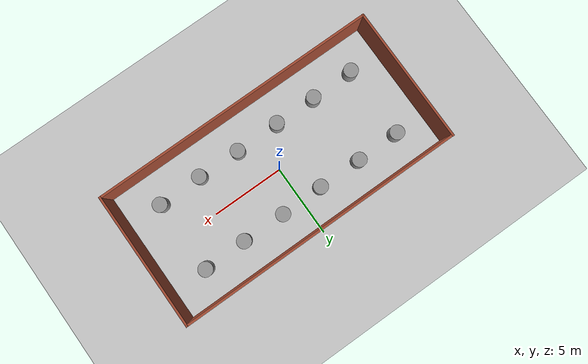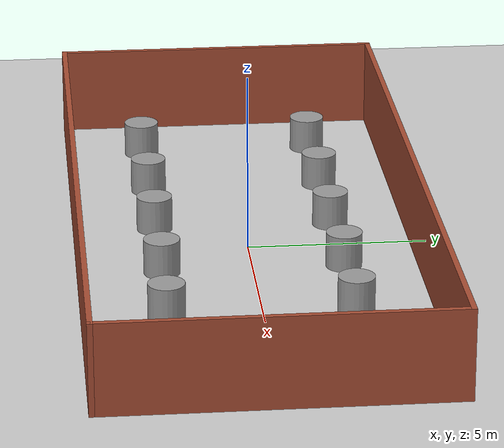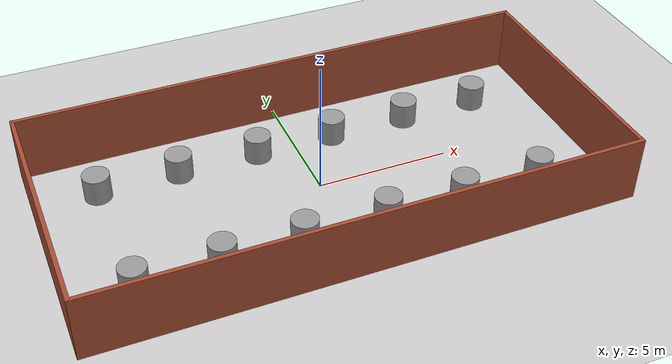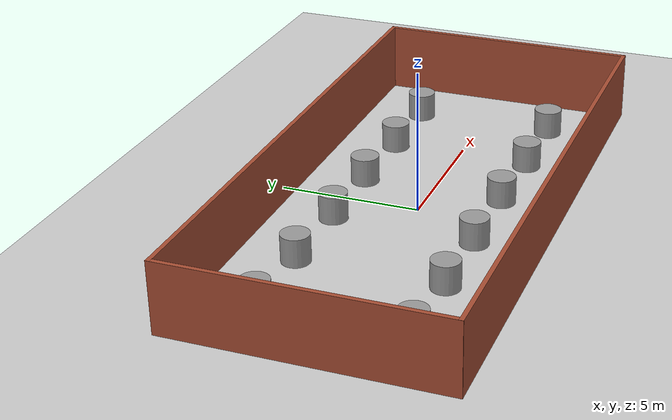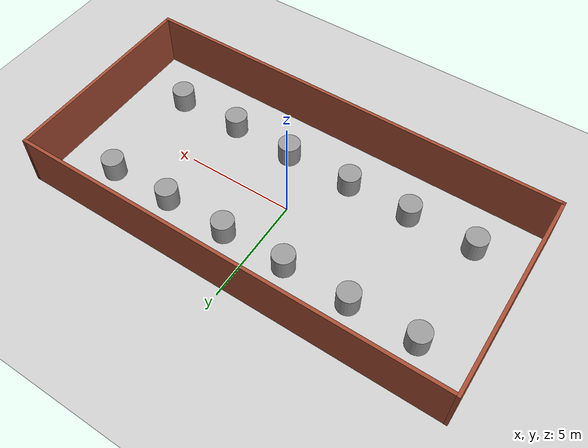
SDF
<sdf version="1.7">
 <world name="default">
  <light name="sun" type="directional">
   <pose>0 0 10 0 -0 0</pose>
   <diffuse>0.8 0.8 0.8 1</diffuse>
   <specular>0.2 0.2 0.2 1</specular>
   <attenuation>
    <range>1000</range>
    <constant>0.9</constant>
    <linear>0.01</linear>
    <quadratic>0.001</quadratic>
   </attenuation>
   <direction>-0.5 0.1 -0.9</direction>
   <spot><inner_angle>0</inner_angle><outer_angle>0</outer_angle><falloff>0</falloff></spot>
  </light>
  <model name="ground_plane">
   <static>1</static>
   <link name="link">
    <collision name="collision">
     <geometry><plane><normal>0 0 1</normal><size>100 100</size></plane></geometry>
     <surface>
      <contact><collide_bitmask>65535</collide_bitmask></contact>
      <friction><ode><mu>100</mu><mu2>50</mu2></ode></friction>
     </surface>
    </collision>
    <visual name="visual">
     <cast_shadows>0</cast_shadows>
     <geometry><plane><normal>0 0 1</normal><size>100 100</size></plane></geometry>
     <material>
      <script><uri>file://media/materials/scripts/gazebo.material</uri><name>Gazebo/Grey</name></script>
     </material>
    </visual>
   </link>
  </model>
  <gravity>0 0 -9.8</gravity>
  <magnetic_field>6e-06 2.3e-05 -4.2e-05</magnetic_field>
  <atmosphere type="adiabatic"/>
  <physics type="ode">
   <max_step_size>0.001</max_step_size>
   <real_time_factor>1</real_time_factor>
   <real_time_update_rate>1000</real_time_update_rate>
  </physics>
  <scene><ambient>0.4 0.4 0.4 1</ambient><background>0.7 0.7 0.7 1</background><shadows>1</shadows></scene>
  <spherical_coordinates>
   <surface_model>EARTH_WGS84</surface_model>
   <latitude_deg>0</latitude_deg>
   <longitude_deg>0</longitude_deg>
   <elevation>0</elevation>
   <heading_deg>0</heading_deg>
  </spherical_coordinates>
  <model name="airport">
   <pose>0.100451 -0.05979 0 0 -0 0</pose>
   <link name="Wall_16">
    <collision name="Wall_16_Collision">
     <geometry><box><size>20 0.15 2.5</size></box></geometry>
     <pose>0 0 1.25 0 -0 0</pose>
    </collision>
    <visual name="Wall_16_Visual">
     <pose>0 0 1.25 0 -0 0</pose>
     <geometry><box><size>20 0.15 2.5</size></box></geometry>
     <material>
      <script><uri>file://media/materials/scripts/gazebo.material</uri><name>Gazebo/Bricks</name></script>
      <ambient>1 1 1 1</ambient>
     </material>
     <meta><layer>0</layer></meta>
    </visual>
    <pose>0.003083 4.67145 0 0 -0 0</pose>
   </link>
   <link name="Wall_18">
    <collision name="Wall_18_Collision">
     <geometry><box><size>9.5 0.15 2.5</size></box></geometry>
     <pose>0 0 1.25 0 -0 0</pose>
    </collision>
    <visual name="Wall_18_Visual">
     <pose>0 0 1.25 0 -0 0</pose>
     <geometry><box><size>9.5 0.15 2.5</size></box></geometry>
     <material>
      <script><uri>file://media/materials/scripts/gazebo.material</uri><name>Gazebo/Bricks</name></script>
      <ambient>1 1 1 1</ambient>
     </material>
     <meta><layer>0</layer></meta>
    </visual>
    <pose>9.92808 -0.003549 0 0 -0 -1.5708</pose>
   </link>
   <link name="Wall_21">
    <collision name="Wall_21_Collision">
     <geometry><box><size>9.5 0.15 2.5</size></box></geometry>
     <pose>0 0 1.25 0 -0 0</pose>
    </collision>
    <visual name="Wall_21_Visual">
     <pose>0 0 1.25 0 -0 0</pose>
     <geometry><box><size>9.5 0.15 2.5</size></box></geometry>
     <material>
      <script><uri>file://media/materials/scripts/gazebo.material</uri><name>Gazebo/Bricks</name></script>
      <ambient>1 1 1 1</ambient>
     </material>
     <meta><layer>0</layer></meta>
    </visual>
    <pose>-9.92808 0.003548 0 0 -0 -1.5708</pose>
   </link>
   <link name="Wall_3">
    <collision name="Wall_3_Collision">
     <geometry><box><size>20 0.15 2.5</size></box></geometry>
     <pose>0 0 1.25 0 -0 0</pose>
    </collision>
    <visual name="Wall_3_Visual">
     <pose>0 0 1.25 0 -0 0</pose>
     <geometry><box><size>20 0.15 2.5</size></box></geometry>
     <material>
      <script><uri>file://media/materials/scripts/gazebo.material</uri><name>Gazebo/Bricks</name></script>
      <ambient>1 1 1 1</ambient>
     </material>
     <meta><layer>0</layer></meta>
    </visual>
    <pose>0.003083 -4.67855 0 0 -0 0</pose>
   </link>
   <static>1</static>
  </model>
  <model name="unit_cylinder">
   <pose>-7.525 -2.53595 0.499996 4e-06 2e-06 -0</pose>
   <link name="link">
    <inertial>
     <mass>1</mass>
     <inertia><ixx>0.145833</ixx><ixy>0</ixy><ixz>0</ixz><iyy>0.145833</iyy><iyz>0</iyz><izz>0.125</izz></inertia>
    </inertial>
    <collision name="collision">
     <geometry><cylinder><radius>0.5</radius><length>1</length></cylinder></geometry>
    </collision>
    <visual name="visual">
     <geometry><cylinder><radius>0.5</radius><length>1</length></cylinder></geometry>
     <material>
      <script><name>Gazebo/Grey</name><uri>file://media/materials/scripts/gazebo.material</uri></script>
     </material>
    </visual>
   </link>
  </model>
  <model name="unit_cylinder_0">
   <pose>-4.5093 -2.50496 0.499998 3e-06 -4e-06 0</pose>
   <link name="link">
    <inertial>
     <mass>1</mass>
     <inertia><ixx>0.145833</ixx><ixy>0</ixy><ixz>0</ixz><iyy>0.145833</iyy><iyz>0</iyz><izz>0.125</izz></inertia>
    </inertial>
    <collision name="collision">
     <geometry><cylinder><radius>0.5</radius><length>1</length></cylinder></geometry>
    </collision>
    <visual name="visual">
     <geometry><cylinder><radius>0.5</radius><length>1</length></cylinder></geometry>
     <material>
      <script><name>Gazebo/Grey</name><uri>file://media/materials/scripts/gazebo.material</uri></script>
     </material>
    </visual>
   </link>
  </model>
  <model name="unit_cylinder_1">
   <pose>-1.58489 -2.50291 0.499992 -3e-06 4e-06 0</pose>
   <link name="link">
    <inertial>
     <mass>1</mass>
     <inertia><ixx>0.145833</ixx><ixy>0</ixy><ixz>0</ixz><iyy>0.145833</iyy><iyz>0</iyz><izz>0.125</izz></inertia>
    </inertial>
    <collision name="collision">
     <geometry><cylinder><radius>0.5</radius><length>1</length></cylinder></geometry>
    </collision>
    <visual name="visual">
     <geometry><cylinder><radius>0.5</radius><length>1</length></cylinder></geometry>
     <material>
      <script><name>Gazebo/Grey</name><uri>file://media/materials/scripts/gazebo.material</uri></script>
     </material>
    </visual>
   </link>
  </model>
  <model name="unit_cylinder_2">
   <pose>1.51444 -2.4874 0.499998 3e-06 -4e-06 0</pose>
   <link name="link">
    <inertial>
     <mass>1</mass>
     <inertia><ixx>0.145833</ixx><ixy>0</ixy><ixz>0</ixz><iyy>0.145833</iyy><iyz>0</iyz><izz>0.125</izz></inertia>
    </inertial>
    <collision name="collision">
     <geometry><cylinder><radius>0.5</radius><length>1</length></cylinder></geometry>
    </collision>
    <visual name="visual">
     <geometry><cylinder><radius>0.5</radius><length>1</length></cylinder></geometry>
     <material>
      <script><name>Gazebo/Grey</name><uri>file://media/materials/scripts/gazebo.material</uri></script>
     </material>
    </visual>
   </link>
  </model>
  <model name="unit_cylinder_3">
   <pose>4.47192 -2.5481 0.499992 -3e-06 4e-06 0</pose>
   <link name="link">
    <inertial>
     <mass>1</mass>
     <inertia><ixx>0.145833</ixx><ixy>0</ixy><ixz>0</ixz><iyy>0.145833</iyy><iyz>0</iyz><izz>0.125</izz></inertia>
    </inertial>
    <collision name="collision">
     <geometry><cylinder><radius>0.5</radius><length>1</length></cylinder></geometry>
    </collision>
    <visual name="visual">
     <geometry><cylinder><radius>0.5</radius><length>1</length></cylinder></geometry>
     <material>
      <script><name>Gazebo/Grey</name><uri>file://media/materials/scripts/gazebo.material</uri></script>
     </material>
    </visual>
   </link>
  </model>
  <model name="unit_cylinder_5">
   <pose>-7.547 2.48273 0.499997 4e-06 3e-06 -0</pose>
   <link name="link">
    <inertial>
     <mass>1</mass>
     <inertia><ixx>0.145833</ixx><ixy>0</ixy><ixz>0</ixz><iyy>0.145833</iyy><iyz>0</iyz><izz>0.125</izz></inertia>
    </inertial>
    <collision name="collision">
     <geometry><cylinder><radius>0.5</radius><length>1</length></cylinder></geometry>
    </collision>
    <visual name="visual">
     <geometry><cylinder><radius>0.5</radius><length>1</length></cylinder></geometry>
     <material>
      <script><name>Gazebo/Grey</name><uri>file://media/materials/scripts/gazebo.material</uri></script>
     </material>
    </visual>
   </link>
  </model>
  <model name="unit_cylinder_6">
   <pose>-4.52644 2.50722 0.499992 -3e-06 4e-06 0</pose>
   <link name="link">
    <inertial>
     <mass>1</mass>
     <inertia><ixx>0.145833</ixx><ixy>0</ixy><ixz>0</ixz><iyy>0.145833</iyy><iyz>0</iyz><izz>0.125</izz></inertia>
    </inertial>
    <collision name="collision">
     <geometry><cylinder><radius>0.5</radius><length>1</length></cylinder></geometry>
    </collision>
    <visual name="visual">
     <geometry><cylinder><radius>0.5</radius><length>1</length></cylinder></geometry>
     <material>
      <script><name>Gazebo/Grey</name><uri>file://media/materials/scripts/gazebo.material</uri></script>
     </material>
    </visual>
   </link>
  </model>
  <model name="unit_cylinder_7">
   <pose>-1.49787 2.48131 0.499997 4e-06 3e-06 -0</pose>
   <link name="link">
    <inertial>
     <mass>1</mass>
     <inertia><ixx>0.145833</ixx><ixy>0</ixy><ixz>0</ixz><iyy>0.145833</iyy><iyz>0</iyz><izz>0.125</izz></inertia>
    </inertial>
    <collision name="collision">
     <geometry><cylinder><radius>0.5</radius><length>1</length></cylinder></geometry>
    </collision>
    <visual name="visual">
     <geometry><cylinder><radius>0.5</radius><length>1</length></cylinder></geometry>
     <material>
      <script><name>Gazebo/Grey</name><uri>file://media/materials/scripts/gazebo.material</uri></script>
     </material>
    </visual>
   </link>
  </model>
  <model name="unit_cylinder_8">
   <pose>1.48008 2.51109 0.499997 4e-06 4e-06 -0</pose>
   <link name="link">
    <inertial>
     <mass>1</mass>
     <inertia><ixx>0.145833</ixx><ixy>0</ixy><ixz>0</ixz><iyy>0.145833</iyy><iyz>0</iyz><izz>0.125</izz></inertia>
    </inertial>
    <collision name="collision">
     <geometry><cylinder><radius>0.5</radius><length>1</length></cylinder></geometry>
    </collision>
    <visual name="visual">
     <geometry><cylinder><radius>0.5</radius><length>1</length></cylinder></geometry>
     <material>
      <script><name>Gazebo/Grey</name><uri>file://media/materials/scripts/gazebo.material</uri></script>
     </material>
    </visual>
   </link>
  </model>
  <model name="unit_cylinder_9">
   <pose>4.47615 2.47068 0.499992 -3e-06 -4e-06 -0</pose>
   <link name="link">
    <inertial>
     <mass>1</mass>
     <inertia><ixx>0.145833</ixx><ixy>0</ixy><ixz>0</ixz><iyy>0.145833</iyy><iyz>0</iyz><izz>0.125</izz></inertia>
    </inertial>
    <collision name="collision">
     <geometry><cylinder><radius>0.5</radius><length>1</length></cylinder></geometry>
    </collision>
    <visual name="visual">
     <geometry><cylinder><radius>0.5</radius><length>1</length></cylinder></geometry>
     <material>
      <script><name>Gazebo/Grey</name><uri>file://media/materials/scripts/gazebo.material</uri></script>
     </material>
    </visual>
   </link>
  </model>
  <model name="unit_cylinder_10">
   <pose>7.45808 2.50783 0.499997 4e-06 4e-06 -0</pose>
   <link name="link">
    <inertial>
     <mass>1</mass>
     <inertia><ixx>0.145833</ixx><ixy>0</ixy><ixz>0</ixz><iyy>0.145833</iyy><iyz>0</iyz><izz>0.125</izz></inertia>
    </inertial>
    <collision name="collision">
     <geometry><cylinder><radius>0.5</radius><length>1</length></cylinder></geometry>
    </collision>
    <visual name="visual">
     <geometry><cylinder><radius>0.5</radius><length>1</length></cylinder></geometry>
     <material>
      <script><name>Gazebo/Grey</name><uri>file://media/materials/scripts/gazebo.material</uri></script>
     </material>
    </visual>
   </link>
  </model>
  <model name="unit_cylinder_4">
   <pose>7.5252 -2.51256 0.499998 3e-06 -2e-06 0</pose>
   <link name="link">
    <inertial>
     <mass>1</mass>
     <inertia><ixx>0.145833</ixx><ixy>0</ixy><ixz>0</ixz><iyy>0.145833</iyy><iyz>0</iyz><izz>0.125</izz></inertia>
    </inertial>
    <collision name="collision">
     <geometry><cylinder><radius>0.5</radius><length>1</length></cylinder></geometry>
    </collision>
    <visual name="visual">
     <geometry><cylinder><radius>0.5</radius><length>1</length></cylinder></geometry>
     <material>
      <script><name>Gazebo/Grey</name><uri>file://media/materials/scripts/gazebo.material</uri></script>
     </material>
    </visual>
   </link>
  </model>
  <light name="user_spot_light_0" type="spot">
   <pose>7.44103 -2.50552 1 0 -0 0</pose>
   <diffuse>0.5 0.5 0.5 1</diffuse>
   <specular>0.1 0.1 0.1 1</specular>
   <direction>0 0 -1</direction>
   <attenuation>
    <range>20</range>
    <constant>0.5</constant>
    <linear>0.01</linear>
    <quadratic>0.001</quadratic>
   </attenuation>
   <cast_shadows>0</cast_shadows>
   <spot><inner_angle>0.6</inner_angle><outer_angle>1</outer_angle><falloff>1</falloff></spot>
  </light>
  <light name="user_spot_light_1" type="spot">
   <pose>4.62503 -2.54384 1 0 -0 0</pose>
   <diffuse>0.5 0.5 0.5 1</diffuse>
   <specular>0.1 0.1 0.1 1</specular>
   <direction>0 0 -1</direction>
   <attenuation>
    <range>20</range>
    <constant>0.5</constant>
    <linear>0.01</linear>
    <quadratic>0.001</quadratic>
   </attenuation>
   <cast_shadows>0</cast_shadows>
   <spot><inner_angle>0.6</inner_angle><outer_angle>1</outer_angle><falloff>1</falloff></spot>
  </light>
  <light name="user_spot_light_1_clone" type="spot">
   <pose>1.51001 -2.48864 1.5 0 -0 0</pose>
   <diffuse>0.498039 0.498039 0.498039 1</diffuse>
   <specular>0.0980392 0.0980392 0.0980392 1</specular>
   <direction>0 0 -1</direction>
   <attenuation>
    <range>20</range>
    <constant>0.5</constant>
    <linear>0.01</linear>
    <quadratic>0.001</quadratic>
   </attenuation>
   <cast_shadows>0</cast_shadows>
   <spot><inner_angle>0.6</inner_angle><outer_angle>1</outer_angle><falloff>1</falloff></spot>
  </light>
  <light name="user_spot_light_1_clone_1" type="spot">
   <pose>-4.40053 -2.50273 1.5 0 -0 0</pose>
   <diffuse>0.498039 0.498039 0.498039 1</diffuse>
   <specular>0.0980392 0.0980392 0.0980392 1</specular>
   <direction>0 0 -1</direction>
   <attenuation>
    <range>20</range>
    <constant>0.5</constant>
    <linear>0.01</linear>
    <quadratic>0.001</quadratic>
   </attenuation>
   <cast_shadows>0</cast_shadows>
   <spot><inner_angle>0.6</inner_angle><outer_angle>1</outer_angle><falloff>1</falloff></spot>
  </light>
  <light name="user_spot_light_1_clone_2" type="spot">
   <pose>-1.51917 -2.49086 1.5 0 -0 0</pose>
   <diffuse>0.498039 0.498039 0.498039 1</diffuse>
   <specular>0.0980392 0.0980392 0.0980392 1</specular>
   <direction>0 0 -1</direction>
   <attenuation>
    <range>20</range>
    <constant>0.5</constant>
    <linear>0.01</linear>
    <quadratic>0.001</quadratic>
   </attenuation>
   <cast_shadows>0</cast_shadows>
   <spot><inner_angle>0.6</inner_angle><outer_angle>1</outer_angle><falloff>1</falloff></spot>
  </light>
  <light name="user_spot_light_1_clone_3" type="spot">
   <pose>-7.4711 -2.52254 1.5 0 -0 0</pose>
   <diffuse>0.498039 0.498039 0.498039 1</diffuse>
   <specular>0.0980392 0.0980392 0.0980392 1</specular>
   <direction>0 0 -1</direction>
   <attenuation>
    <range>20</range>
    <constant>0.5</constant>
    <linear>0.01</linear>
    <quadratic>0.001</quadratic>
   </attenuation>
   <cast_shadows>0</cast_shadows>
   <spot><inner_angle>0.6</inner_angle><outer_angle>1</outer_angle><falloff>1</falloff></spot>
  </light>
  <light name="user_spot_light_1_clone_4" type="spot">
   <pose>7.4862 2.52125 1.5 0 -0 0</pose>
   <diffuse>0.498039 0.498039 0.498039 1</diffuse>
   <specular>0.0980392 0.0980392 0.0980392 1</specular>
   <direction>0 0 -1</direction>
   <attenuation>
    <range>20</range>
    <constant>0.5</constant>
    <linear>0.01</linear>
    <quadratic>0.001</quadratic>
   </attenuation>
   <cast_shadows>0</cast_shadows>
   <spot><inner_angle>0.6</inner_angle><outer_angle>1</outer_angle><falloff>1</falloff></spot>
  </light>
  <light name="user_spot_light_1_clone_5" type="spot">
   <pose>4.49152 2.47564 1.5 0 -0 0</pose>
   <diffuse>0.498039 0.498039 0.498039 1</diffuse>
   <specular>0.0980392 0.0980392 0.0980392 1</specular>
   <direction>0 0 -1</direction>
   <attenuation>
    <range>20</range>
    <constant>0.5</constant>
    <linear>0.01</linear>
    <quadratic>0.001</quadratic>
   </attenuation>
   <cast_shadows>0</cast_shadows>
   <spot><inner_angle>0.6</inner_angle><outer_angle>1</outer_angle><falloff>1</falloff></spot>
  </light>
  <light name="user_spot_light_1_clone_6" type="spot">
   <pose>1.48864 2.53539 1.5 0 -0 0</pose>
   <diffuse>0.498039 0.498039 0.498039 1</diffuse>
   <specular>0.0980392 0.0980392 0.0980392 1</specular>
   <direction>0 0 -1</direction>
   <attenuation>
    <range>20</range>
    <constant>0.5</constant>
    <linear>0.01</linear>
    <quadratic>0.001</quadratic>
   </attenuation>
   <cast_shadows>0</cast_shadows>
   <spot><inner_angle>0.6</inner_angle><outer_angle>1</outer_angle><falloff>1</falloff></spot>
  </light>
  <light name="user_spot_light_1_clone_7" type="spot">
   <pose>-1.4929 2.4898 1.5 0 -0 0</pose>
   <diffuse>0.498039 0.498039 0.498039 1</diffuse>
   <specular>0.0980392 0.0980392 0.0980392 1</specular>
   <direction>0 0 -1</direction>
   <attenuation>
    <range>20</range>
    <constant>0.5</constant>
    <linear>0.01</linear>
    <quadratic>0.001</quadratic>
   </attenuation>
   <cast_shadows>0</cast_shadows>
   <spot><inner_angle>0.6</inner_angle><outer_angle>1</outer_angle><falloff>1</falloff></spot>
  </light>
  <light name="user_spot_light_1_clone_8" type="spot">
   <pose>-4.49812 2.5372 1.5 0 -0 0</pose>
   <diffuse>0.498039 0.498039 0.498039 1</diffuse>
   <specular>0.0980392 0.0980392 0.0980392 1</specular>
   <direction>0 0 -1</direction>
   <attenuation>
    <range>20</range>
    <constant>0.5</constant>
    <linear>0.01</linear>
    <quadratic>0.001</quadratic>
   </attenuation>
   <cast_shadows>0</cast_shadows>
   <spot><inner_angle>0.6</inner_angle><outer_angle>1</outer_angle><falloff>1</falloff></spot>
  </light>
  <light name="user_spot_light_1_clone_9" type="spot">
   <pose>-7.54702 2.48584 1.5 0 -0 0</pose>
   <diffuse>0.498039 0.498039 0.498039 1</diffuse>
   <specular>0.0980392 0.0980392 0.0980392 1</specular>
   <direction>0 0 -1</direction>
   <attenuation>
    <range>20</range>
    <constant>0.5</constant>
    <linear>0.01</linear>
    <quadratic>0.001</quadratic>
   </attenuation>
   <cast_shadows>0</cast_shadows>
   <spot><inner_angle>0.6</inner_angle><outer_angle>1</outer_angle><falloff>1</falloff></spot>
  </light>
 </world>
</sdf>
